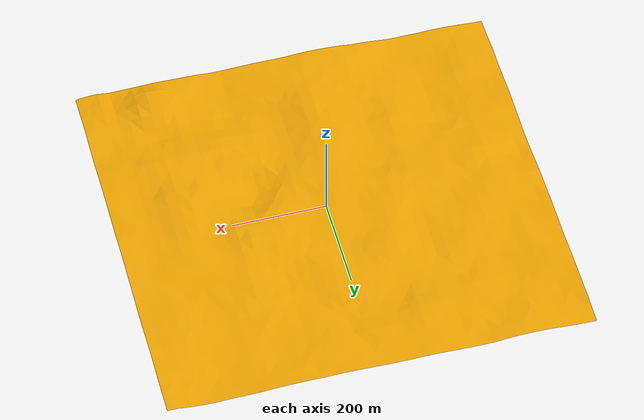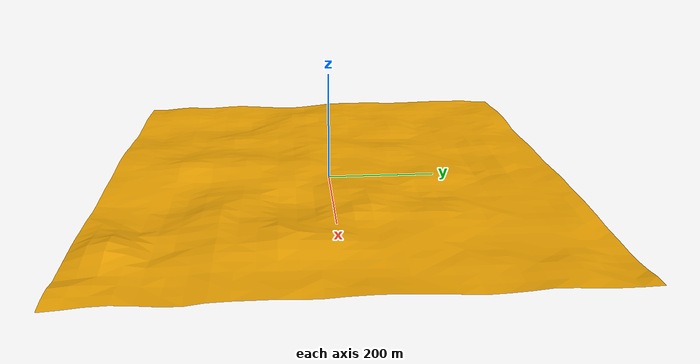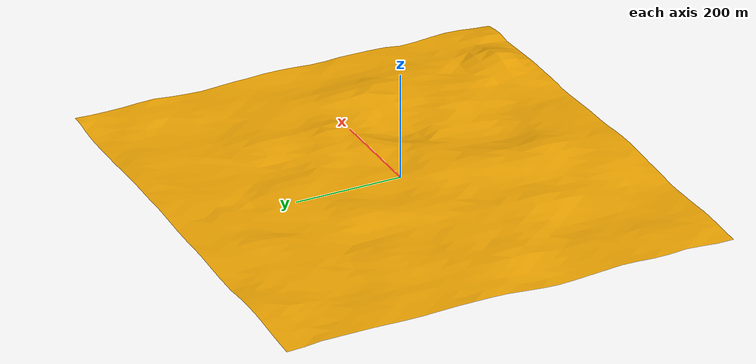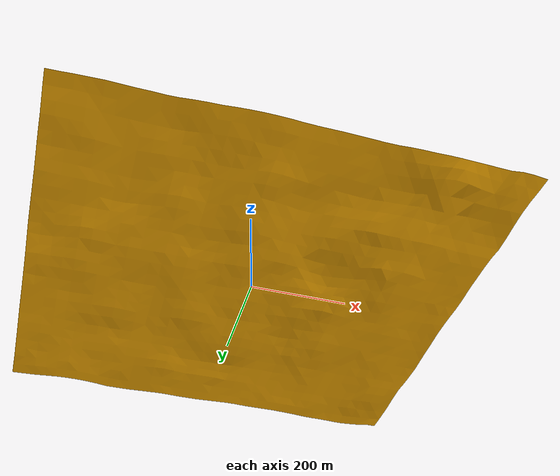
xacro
<robot name="robot">
  <link name="albacete_Terrain_link">
    <inertial>
      <origin xyz="0 0 0" rpy="0 0 0" />
      <mass value="1" />
      <inertia ixx="1" ixy="0" ixz="0" iyy="1" iyz="0" izz="1" />
    </inertial>
    <visual>
      <origin xyz="0 0 0" rpy="0 0 0" />
      <geometry>
        <mesh filename="file://$(find siam_main)/meshes/albacete_Terrain.dae" />
      </geometry>
    </visual>
    <collision>
      <origin xyz="0 0 0" rpy="0 0 0" />
      <geometry>
        <mesh filename="file://$(find siam_main)/meshes/albacete_Terrain.dae" />
      </geometry>
    </collision>
  </link>

  <gazebo> <static>true</static></gazebo>
</robot>
